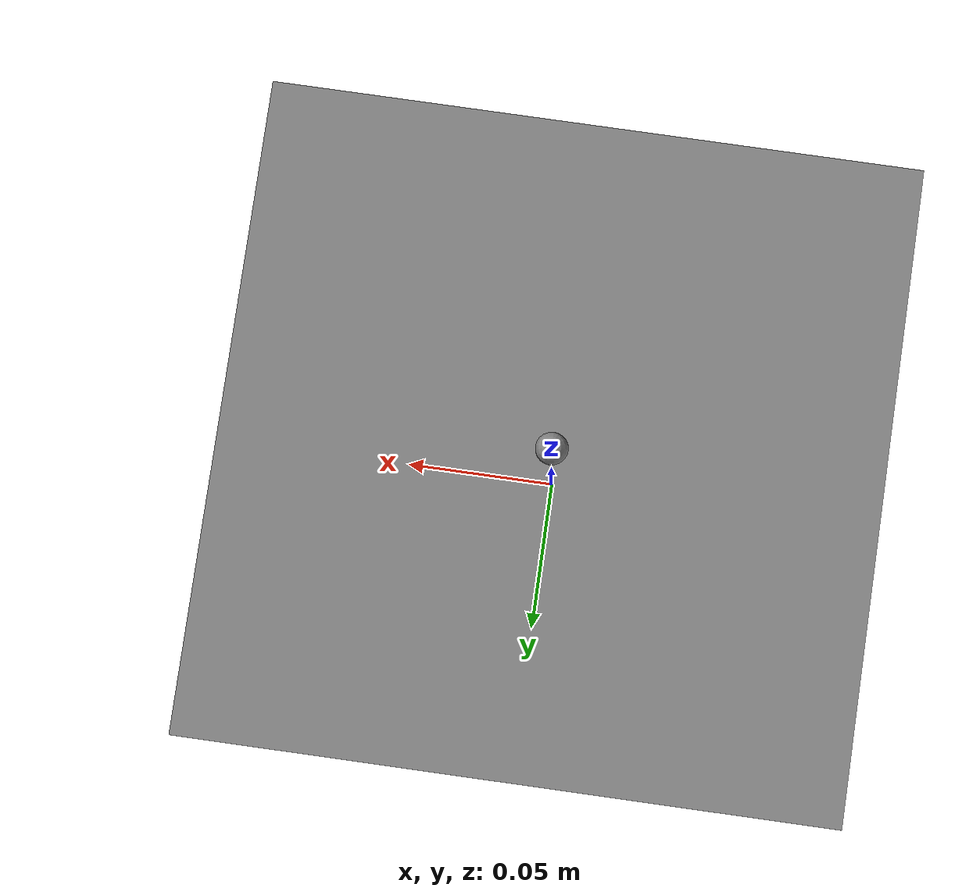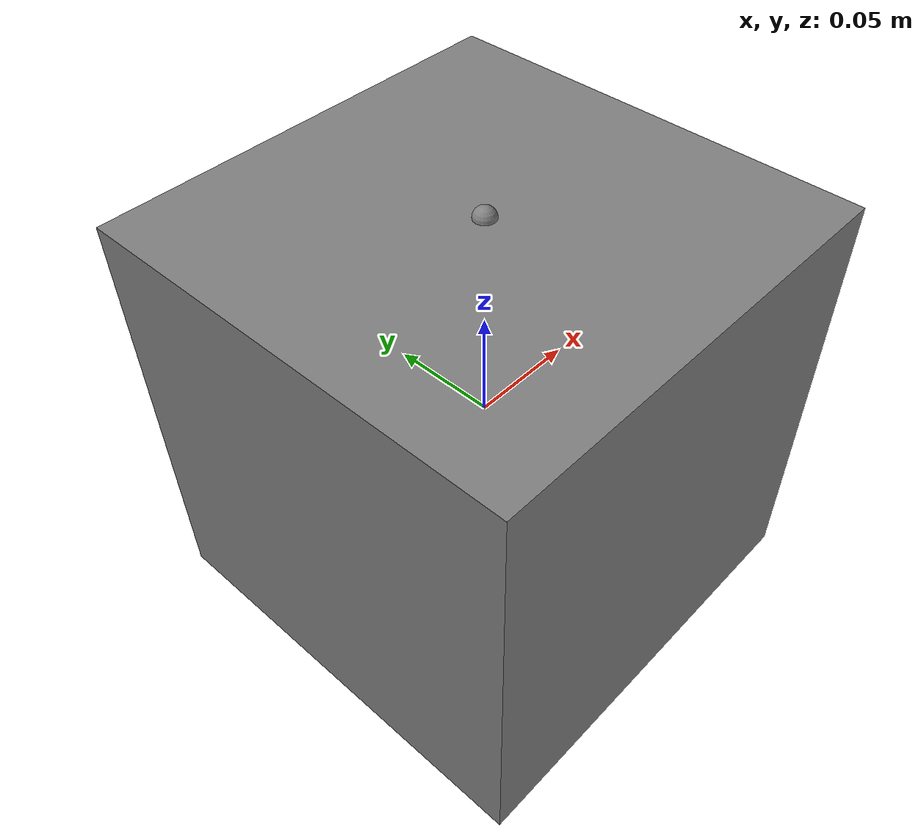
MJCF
<mujoco model="muscle_lr">
            <worldbody>
                <body name="arm" pos="0 0 0">
                    <joint name="hinge" type="hinge" axis="0 1 0"
                           limited="true" range="-60 60"/>
                    <geom type="box" size="0.1 0.1 0.1" mass="1.0"/>
                    <site name="s1" pos="0 0 0.1"/>
                </body>
            </worldbody>
            <actuator>
                <muscle name="mus" joint="hinge" gear="2"/>
            </actuator>
        </mujoco>
